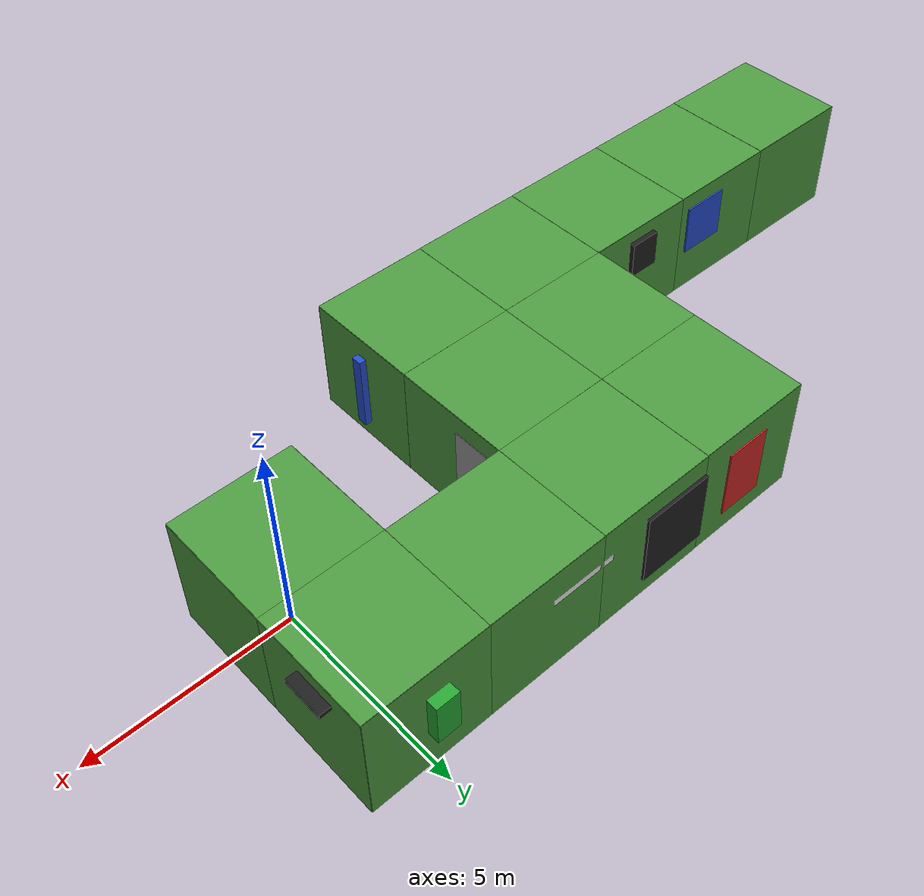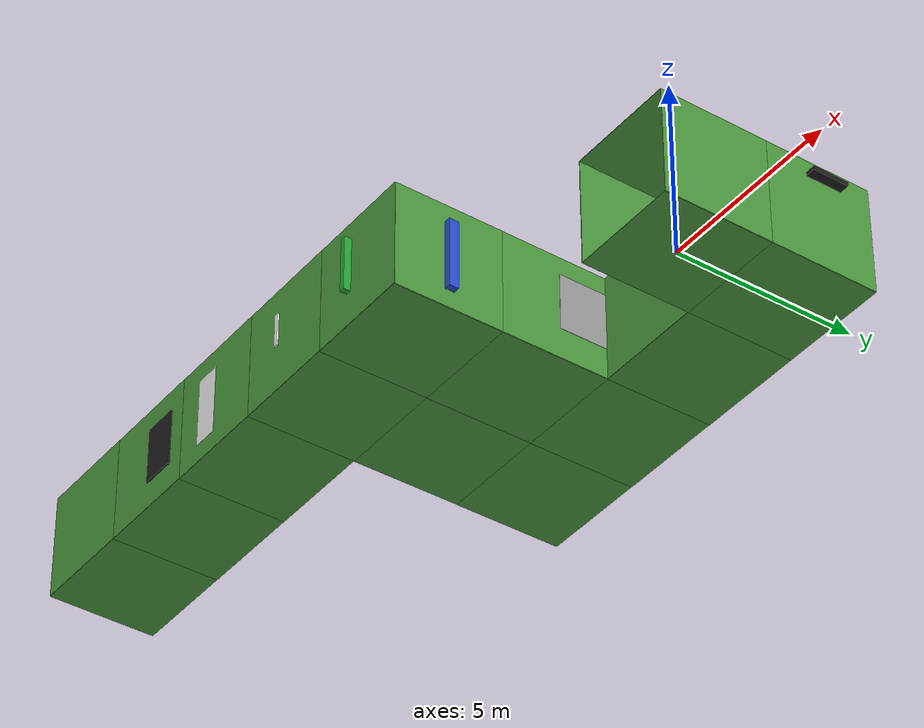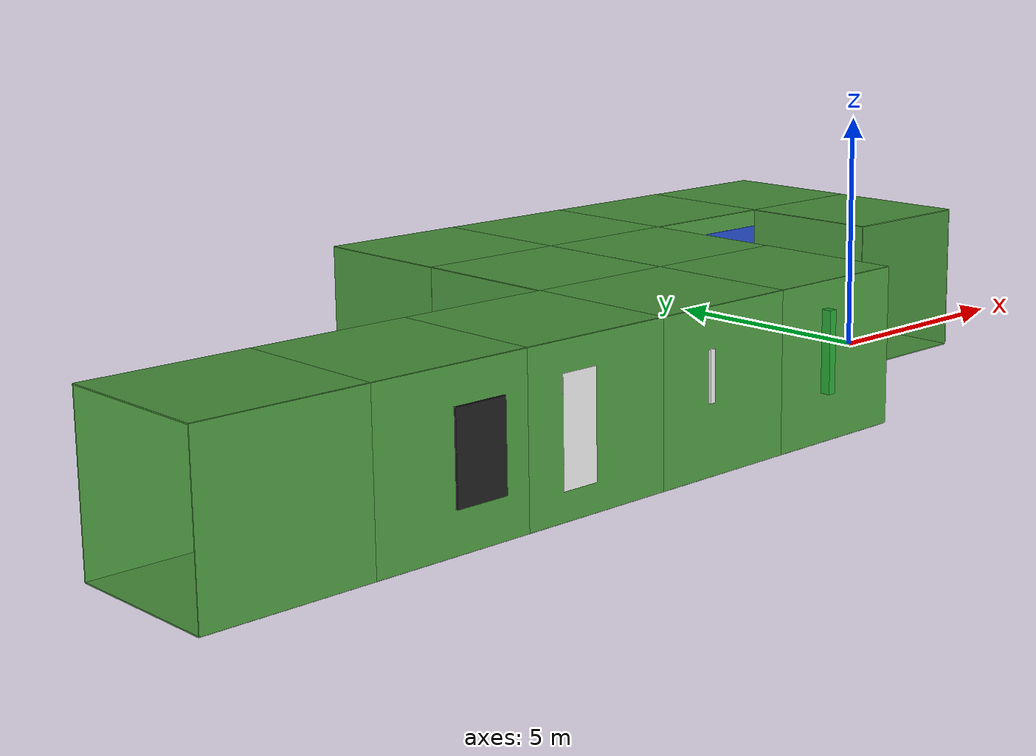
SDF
<?xml version='1.0' encoding='us-ascii'?>
<sdf version="1.6">
  <model name="corridor_grass">
    <model name="wall_right_0_0_0_0">
      <static>1</static>
      <pose>1.5 0.0 1.5 0.0 0.0 1.57</pose>
      <link name="link">
        <collision name="collision">
          <geometry>
            <box>
              <size>3 0.02 3</size>
            </box>
          </geometry>
        </collision>
        <visual name="visual">
          <material>
            <script>
              <name>Gazebo/Grass</name>
              <uri>file://media/materials/scripts/gazebo.material</uri>
            </script>
          </material>
          <geometry>
            <box>
              <size>3 0.02 3</size>
            </box>
          </geometry>
        </visual>
      </link>
    </model>
    <model name="wall_left_0_0_0_0">
      <static>1</static>
      <pose>-1.5 0.0 1.5 0.0 0.0 1.57</pose>
      <link name="link">
        <collision name="collision">
          <geometry>
            <box>
              <size>3 0.02 3</size>
            </box>
          </geometry>
        </collision>
        <visual name="visual">
          <material>
            <script>
              <name>Gazebo/Grass</name>
              <uri>file://media/materials/scripts/gazebo.material</uri>
            </script>
          </material>
          <geometry>
            <box>
              <size>3 0.02 3</size>
            </box>
          </geometry>
        </visual>
      </link>
    </model>
    <model name="wall_top_0_0_0_0">
      <static>1</static>
      <pose>0.0 0.0 3.0 1.57 0.0 0.0</pose>
      <link name="link">
        <collision name="collision">
          <geometry>
            <box>
              <size>3 0.02 3</size>
            </box>
          </geometry>
        </collision>
        <visual name="visual">
          <material>
            <script>
              <name>Gazebo/Grass</name>
              <uri>file://media/materials/scripts/gazebo.material</uri>
            </script>
          </material>
          <geometry>
            <box>
              <size>3 0.02 3</size>
            </box>
          </geometry>
        </visual>
      </link>
    </model>
    <model name="wall_bottom_0_0_0_0">
      <static>1</static>
      <pose>0.0 0.0 0.0 1.57 0.0 0.0</pose>
      <link name="link">
        <collision name="collision">
          <geometry>
            <box>
              <size>3 0.02 3</size>
            </box>
          </geometry>
        </collision>
        <visual name="visual">
          <material>
            <script>
              <name>Gazebo/Grass</name>
              <uri>file://media/materials/scripts/gazebo.material</uri>
            </script>
          </material>
          <geometry>
            <box>
              <size>3 0.02 3</size>
            </box>
          </geometry>
        </visual>
      </link>
    </model>
    <model name="wall_front_0_1_0_3">
      <static>1</static>
      <pose>0.0 4.5 1.5 0.0 0.0 0.0</pose>
      <link name="link">
        <collision name="collision">
          <geometry>
            <box>
              <size>3 0.02 3</size>
            </box>
          </geometry>
        </collision>
        <visual name="visual">
          <material>
            <script>
              <name>Gazebo/Grass</name>
              <uri>file://media/materials/scripts/gazebo.material</uri>
            </script>
          </material>
          <geometry>
            <box>
              <size>3 0.02 3</size>
            </box>
          </geometry>
        </visual>
      </link>
    </model>
    <model name="wall_right_0_1_0_3">
      <static>1</static>
      <pose>1.5 3.0 1.5 0.0 0.0 1.57</pose>
      <link name="link">
        <collision name="collision">
          <geometry>
            <box>
              <size>3 0.02 3</size>
            </box>
          </geometry>
        </collision>
        <visual name="visual">
          <material>
            <script>
              <name>Gazebo/Grass</name>
              <uri>file://media/materials/scripts/gazebo.material</uri>
            </script>
          </material>
          <geometry>
            <box>
              <size>3 0.02 3</size>
            </box>
          </geometry>
        </visual>
      </link>
    </model>
    <model name="wall_top_0_1_0_3">
      <static>1</static>
      <pose>0.0 3.0 3.0 1.57 0.0 0.0</pose>
      <link name="link">
        <collision name="collision">
          <geometry>
            <box>
              <size>3 0.02 3</size>
            </box>
          </geometry>
        </collision>
        <visual name="visual">
          <material>
            <script>
              <name>Gazebo/Grass</name>
              <uri>file://media/materials/scripts/gazebo.material</uri>
            </script>
          </material>
          <geometry>
            <box>
              <size>3 0.02 3</size>
            </box>
          </geometry>
        </visual>
      </link>
    </model>
    <model name="wall_bottom_0_1_0_3">
      <static>1</static>
      <pose>0.0 3.0 0.0 1.57 0.0 0.0</pose>
      <link name="link">
        <collision name="collision">
          <geometry>
            <box>
              <size>3 0.02 3</size>
            </box>
          </geometry>
        </collision>
        <visual name="visual">
          <material>
            <script>
              <name>Gazebo/Grass</name>
              <uri>file://media/materials/scripts/gazebo.material</uri>
            </script>
          </material>
          <geometry>
            <box>
              <size>3 0.02 3</size>
            </box>
          </geometry>
        </visual>
      </link>
    </model>
    <model name="panel_0_1_0_3">
      <static>1</static>
      <pose>-0.20617366556555025 4.5 1.70829655038 0.0 0.0 1.57</pose>
      <link name="link">
        <collision name="collision">
          <geometry>
            <box>
              <size>0.587254887424 0.568857313754 1.10521010753</size>
            </box>
          </geometry>
        </collision>
        <visual name="visual">
          <material>
            <script>
              <name>Gazebo/Green</name>
              <uri>file://media/materials/scripts/gazebo.material</uri>
            </script>
          </material>
          <geometry>
            <box>
              <size>0.587254887424 0.568857313754 1.10521010753</size>
            </box>
          </geometry>
        </visual>
      </link>
    </model>
    <model name="panel_0_1_1_3">
      <static>1</static>
      <pose>1.5 3.153744175431503 2.58291809799 0.0 0.0 0.0</pose>
      <link name="link">
        <collision name="collision">
          <geometry>
            <box>
              <size>0.563074217615 1.00561711471 0.107365033973</size>
            </box>
          </geometry>
        </collision>
        <visual name="visual">
          <material>
            <script>
              <name>Gazebo/Black</name>
              <uri>file://media/materials/scripts/gazebo.material</uri>
            </script>
          </material>
          <geometry>
            <box>
              <size>0.563074217615 1.00561711471 0.107365033973</size>
            </box>
          </geometry>
        </visual>
      </link>
    </model>
    <model name="wall_right_-1_1_0_1">
      <static>1</static>
      <pose>-3.0 4.5 1.5 0.0 0.0 3.14</pose>
      <link name="link">
        <collision name="collision">
          <geometry>
            <box>
              <size>3 0.02 3</size>
            </box>
          </geometry>
        </collision>
        <visual name="visual">
          <material>
            <script>
              <name>Gazebo/Grass</name>
              <uri>file://media/materials/scripts/gazebo.material</uri>
            </script>
          </material>
          <geometry>
            <box>
              <size>3 0.02 3</size>
            </box>
          </geometry>
        </visual>
      </link>
    </model>
    <model name="wall_left_-1_1_0_1">
      <static>1</static>
      <pose>-3.0 1.5 1.5 0.0 0.0 3.14</pose>
      <link name="link">
        <collision name="collision">
          <geometry>
            <box>
              <size>3 0.02 3</size>
            </box>
          </geometry>
        </collision>
        <visual name="visual">
          <material>
            <script>
              <name>Gazebo/Grass</name>
              <uri>file://media/materials/scripts/gazebo.material</uri>
            </script>
          </material>
          <geometry>
            <box>
              <size>3 0.02 3</size>
            </box>
          </geometry>
        </visual>
      </link>
    </model>
    <model name="wall_top_-1_1_0_1">
      <static>1</static>
      <pose>-3.0 3.0 3.0 1.57 0.0 1.57</pose>
      <link name="link">
        <collision name="collision">
          <geometry>
            <box>
              <size>3 0.02 3</size>
            </box>
          </geometry>
        </collision>
        <visual name="visual">
          <material>
            <script>
              <name>Gazebo/Grass</name>
              <uri>file://media/materials/scripts/gazebo.material</uri>
            </script>
          </material>
          <geometry>
            <box>
              <size>3 0.02 3</size>
            </box>
          </geometry>
        </visual>
      </link>
    </model>
    <model name="wall_bottom_-1_1_0_1">
      <static>1</static>
      <pose>-3.0 3.0 0.0 1.57 0.0 1.57</pose>
      <link name="link">
        <collision name="collision">
          <geometry>
            <box>
              <size>3 0.02 3</size>
            </box>
          </geometry>
        </collision>
        <visual name="visual">
          <material>
            <script>
              <name>Gazebo/Grass</name>
              <uri>file://media/materials/scripts/gazebo.material</uri>
            </script>
          </material>
          <geometry>
            <box>
              <size>3 0.02 3</size>
            </box>
          </geometry>
        </visual>
      </link>
    </model>
    <model name="panel_-1_1_0_1">
      <static>1</static>
      <pose>-2.2888105868534696 1.5 2.27836944798 0.0 0.0 1.57</pose>
      <link name="link">
        <collision name="collision">
          <geometry>
            <box>
              <size>0.0474576898815 1.61076393909 0.762282445653</size>
            </box>
          </geometry>
        </collision>
        <visual name="visual">
          <material>
            <script>
              <name>Gazebo/Blue</name>
              <uri>file://media/materials/scripts/gazebo.material</uri>
            </script>
          </material>
          <geometry>
            <box>
              <size>0.0474576898815 1.61076393909 0.762282445653</size>
            </box>
          </geometry>
        </visual>
      </link>
    </model>
    <model name="panel_-1_1_1_1">
      <static>1</static>
      <pose>-3.955345844200348 4.5 2.11711492792 0.0 0.0 1.57</pose>
      <link name="link">
        <collision name="collision">
          <geometry>
            <box>
              <size>0.0237688656301 1.64108558094 0.175144061662</size>
            </box>
          </geometry>
        </collision>
        <visual name="visual">
          <material>
            <script>
              <name>Gazebo/White</name>
              <uri>file://media/materials/scripts/gazebo.material</uri>
            </script>
          </material>
          <geometry>
            <box>
              <size>0.0237688656301 1.64108558094 0.175144061662</size>
            </box>
          </geometry>
        </visual>
      </link>
    </model>
    <model name="wall_right_-2_1_0_1">
      <static>1</static>
      <pose>-6.0 4.5 1.5 0.0 0.0 3.14</pose>
      <link name="link">
        <collision name="collision">
          <geometry>
            <box>
              <size>3 0.02 3</size>
            </box>
          </geometry>
        </collision>
        <visual name="visual">
          <material>
            <script>
              <name>Gazebo/Grass</name>
              <uri>file://media/materials/scripts/gazebo.material</uri>
            </script>
          </material>
          <geometry>
            <box>
              <size>3 0.02 3</size>
            </box>
          </geometry>
        </visual>
      </link>
    </model>
    <model name="wall_left_-2_1_0_1">
      <static>1</static>
      <pose>-6.0 1.5 1.5 0.0 0.0 3.14</pose>
      <link name="link">
        <collision name="collision">
          <geometry>
            <box>
              <size>3 0.02 3</size>
            </box>
          </geometry>
        </collision>
        <visual name="visual">
          <material>
            <script>
              <name>Gazebo/Grass</name>
              <uri>file://media/materials/scripts/gazebo.material</uri>
            </script>
          </material>
          <geometry>
            <box>
              <size>3 0.02 3</size>
            </box>
          </geometry>
        </visual>
      </link>
    </model>
    <model name="wall_top_-2_1_0_1">
      <static>1</static>
      <pose>-6.0 3.0 3.0 1.57 0.0 1.57</pose>
      <link name="link">
        <collision name="collision">
          <geometry>
            <box>
              <size>3 0.02 3</size>
            </box>
          </geometry>
        </collision>
        <visual name="visual">
          <material>
            <script>
              <name>Gazebo/Grass</name>
              <uri>file://media/materials/scripts/gazebo.material</uri>
            </script>
          </material>
          <geometry>
            <box>
              <size>3 0.02 3</size>
            </box>
          </geometry>
        </visual>
      </link>
    </model>
    <model name="wall_bottom_-2_1_0_1">
      <static>1</static>
      <pose>-6.0 3.0 0.0 1.57 0.0 1.57</pose>
      <link name="link">
        <collision name="collision">
          <geometry>
            <box>
              <size>3 0.02 3</size>
            </box>
          </geometry>
        </collision>
        <visual name="visual">
          <material>
            <script>
              <name>Gazebo/Grass</name>
              <uri>file://media/materials/scripts/gazebo.material</uri>
            </script>
          </material>
          <geometry>
            <box>
              <size>3 0.02 3</size>
            </box>
          </geometry>
        </visual>
      </link>
    </model>
    <model name="panel_-2_1_0_1">
      <static>1</static>
      <pose>-6.46522045240204 1.5 1.45469663286 0.0 0.0 1.57</pose>
      <link name="link">
        <collision name="collision">
          <geometry>
            <box>
              <size>0.227604984163 0.867688501396 1.33124559532</size>
            </box>
          </geometry>
        </collision>
        <visual name="visual">
          <material>
            <script>
              <name>Gazebo/White</name>
              <uri>file://media/materials/scripts/gazebo.material</uri>
            </script>
          </material>
          <geometry>
            <box>
              <size>0.227604984163 0.867688501396 1.33124559532</size>
            </box>
          </geometry>
        </visual>
      </link>
    </model>
    <model name="panel_-2_1_1_1">
      <static>1</static>
      <pose>-6.60365673027734 4.5 1.50200779432 0.0 0.0 1.57</pose>
      <link name="link">
        <collision name="collision">
          <geometry>
            <box>
              <size>0.174543325939 1.76452988534 1.92557251972</size>
            </box>
          </geometry>
        </collision>
        <visual name="visual">
          <material>
            <script>
              <name>Gazebo/Black</name>
              <uri>file://media/materials/scripts/gazebo.material</uri>
            </script>
          </material>
          <geometry>
            <box>
              <size>0.174543325939 1.76452988534 1.92557251972</size>
            </box>
          </geometry>
        </visual>
      </link>
    </model>
    <model name="wall_front_-3_1_0_3">
      <static>1</static>
      <pose>-10.5 3.0 1.5 0.0 0.0 1.57</pose>
      <link name="link">
        <collision name="collision">
          <geometry>
            <box>
              <size>3 0.02 3</size>
            </box>
          </geometry>
        </collision>
        <visual name="visual">
          <material>
            <script>
              <name>Gazebo/Grass</name>
              <uri>file://media/materials/scripts/gazebo.material</uri>
            </script>
          </material>
          <geometry>
            <box>
              <size>3 0.02 3</size>
            </box>
          </geometry>
        </visual>
      </link>
    </model>
    <model name="wall_right_-3_1_0_3">
      <static>1</static>
      <pose>-9.0 4.5 1.5 0.0 0.0 3.14</pose>
      <link name="link">
        <collision name="collision">
          <geometry>
            <box>
              <size>3 0.02 3</size>
            </box>
          </geometry>
        </collision>
        <visual name="visual">
          <material>
            <script>
              <name>Gazebo/Grass</name>
              <uri>file://media/materials/scripts/gazebo.material</uri>
            </script>
          </material>
          <geometry>
            <box>
              <size>3 0.02 3</size>
            </box>
          </geometry>
        </visual>
      </link>
    </model>
    <model name="wall_top_-3_1_0_3">
      <static>1</static>
      <pose>-9.0 3.0 3.0 1.57 0.0 1.57</pose>
      <link name="link">
        <collision name="collision">
          <geometry>
            <box>
              <size>3 0.02 3</size>
            </box>
          </geometry>
        </collision>
        <visual name="visual">
          <material>
            <script>
              <name>Gazebo/Grass</name>
              <uri>file://media/materials/scripts/gazebo.material</uri>
            </script>
          </material>
          <geometry>
            <box>
              <size>3 0.02 3</size>
            </box>
          </geometry>
        </visual>
      </link>
    </model>
    <model name="wall_bottom_-3_1_0_3">
      <static>1</static>
      <pose>-9.0 3.0 0.0 1.57 0.0 1.57</pose>
      <link name="link">
        <collision name="collision">
          <geometry>
            <box>
              <size>3 0.02 3</size>
            </box>
          </geometry>
        </collision>
        <visual name="visual">
          <material>
            <script>
              <name>Gazebo/Grass</name>
              <uri>file://media/materials/scripts/gazebo.material</uri>
            </script>
          </material>
          <geometry>
            <box>
              <size>3 0.02 3</size>
            </box>
          </geometry>
        </visual>
      </link>
    </model>
    <model name="panel_-3_1_0_3">
      <static>1</static>
      <pose>-10.5 2.3137839577128005 0.406716588768 0.0 0.0 3.14</pose>
      <link name="link">
        <collision name="collision">
          <geometry>
            <box>
              <size>0.045611989098 1.31126150092 0.305686362029</size>
            </box>
          </geometry>
        </collision>
        <visual name="visual">
          <material>
            <script>
              <name>Gazebo/Green</name>
              <uri>file://media/materials/scripts/gazebo.material</uri>
            </script>
          </material>
          <geometry>
            <box>
              <size>0.045611989098 1.31126150092 0.305686362029</size>
            </box>
          </geometry>
        </visual>
      </link>
    </model>
    <model name="panel_-3_1_1_3">
      <static>1</static>
      <pose>-8.854149789010377 4.5 1.48831324731 0.0 0.0 1.57</pose>
      <link name="link">
        <collision name="collision">
          <geometry>
            <box>
              <size>0.0876173632185 1.16307615352 1.84074581955</size>
            </box>
          </geometry>
        </collision>
        <visual name="visual">
          <material>
            <script>
              <name>Gazebo/Red</name>
              <uri>file://media/materials/scripts/gazebo.material</uri>
            </script>
          </material>
          <geometry>
            <box>
              <size>0.0876173632185 1.16307615352 1.84074581955</size>
            </box>
          </geometry>
        </visual>
      </link>
    </model>
    <model name="wall_front_-3_0_0_3">
      <static>1</static>
      <pose>-9.0 -1.5 1.5 0.0 0.0 3.14</pose>
      <link name="link">
        <collision name="collision">
          <geometry>
            <box>
              <size>3 0.02 3</size>
            </box>
          </geometry>
        </collision>
        <visual name="visual">
          <material>
            <script>
              <name>Gazebo/Grass</name>
              <uri>file://media/materials/scripts/gazebo.material</uri>
            </script>
          </material>
          <geometry>
            <box>
              <size>3 0.02 3</size>
            </box>
          </geometry>
        </visual>
      </link>
    </model>
    <model name="wall_right_-3_0_0_3">
      <static>1</static>
      <pose>-10.5 0.0 1.5 0.0 0.0 4.71</pose>
      <link name="link">
        <collision name="collision">
          <geometry>
            <box>
              <size>3 0.02 3</size>
            </box>
          </geometry>
        </collision>
        <visual name="visual">
          <material>
            <script>
              <name>Gazebo/Grass</name>
              <uri>file://media/materials/scripts/gazebo.material</uri>
            </script>
          </material>
          <geometry>
            <box>
              <size>3 0.02 3</size>
            </box>
          </geometry>
        </visual>
      </link>
    </model>
    <model name="wall_top_-3_0_0_3">
      <static>1</static>
      <pose>-9.0 0.0 3.0 1.57 0.0 3.14</pose>
      <link name="link">
        <collision name="collision">
          <geometry>
            <box>
              <size>3 0.02 3</size>
            </box>
          </geometry>
        </collision>
        <visual name="visual">
          <material>
            <script>
              <name>Gazebo/Grass</name>
              <uri>file://media/materials/scripts/gazebo.material</uri>
            </script>
          </material>
          <geometry>
            <box>
              <size>3 0.02 3</size>
            </box>
          </geometry>
        </visual>
      </link>
    </model>
    <model name="wall_bottom_-3_0_0_3">
      <static>1</static>
      <pose>-9.0 0.0 0.0 1.57 0.0 3.14</pose>
      <link name="link">
        <collision name="collision">
          <geometry>
            <box>
              <size>3 0.02 3</size>
            </box>
          </geometry>
        </collision>
        <visual name="visual">
          <material>
            <script>
              <name>Gazebo/Grass</name>
              <uri>file://media/materials/scripts/gazebo.material</uri>
            </script>
          </material>
          <geometry>
            <box>
              <size>3 0.02 3</size>
            </box>
          </geometry>
        </visual>
      </link>
    </model>
    <model name="panel_-3_0_0_3">
      <static>1</static>
      <pose>-8.469642783386634 -1.5 0.885635229762 0.0 0.0 4.71</pose>
      <link name="link">
        <collision name="collision">
          <geometry>
            <box>
              <size>0.253658131985 0.934178217778 0.66192778021</size>
            </box>
          </geometry>
        </collision>
        <visual name="visual">
          <material>
            <script>
              <name>Gazebo/White</name>
              <uri>file://media/materials/scripts/gazebo.material</uri>
            </script>
          </material>
          <geometry>
            <box>
              <size>0.253658131985 0.934178217778 0.66192778021</size>
            </box>
          </geometry>
        </visual>
      </link>
    </model>
    <model name="panel_-3_0_1_3">
      <static>1</static>
      <pose>-10.5 0.8648373040261126 0.90321707446 0.0 0.0 3.14</pose>
      <link name="link">
        <collision name="collision">
          <geometry>
            <box>
              <size>0.348214347187 1.32703512895 0.376564228714</size>
            </box>
          </geometry>
        </collision>
        <visual name="visual">
          <material>
            <script>
              <name>Gazebo/Blue</name>
              <uri>file://media/materials/scripts/gazebo.material</uri>
            </script>
          </material>
          <geometry>
            <box>
              <size>0.348214347187 1.32703512895 0.376564228714</size>
            </box>
          </geometry>
        </visual>
      </link>
    </model>
    <model name="wall_front_-2_0_0_2">
      <static>1</static>
      <pose>-4.5 0.0 1.5 0.0 0.0 -1.57</pose>
      <link name="link">
        <collision name="collision">
          <geometry>
            <box>
              <size>3 0.02 3</size>
            </box>
          </geometry>
        </collision>
        <visual name="visual">
          <material>
            <script>
              <name>Gazebo/Grass</name>
              <uri>file://media/materials/scripts/gazebo.material</uri>
            </script>
          </material>
          <geometry>
            <box>
              <size>3 0.02 3</size>
            </box>
          </geometry>
        </visual>
      </link>
    </model>
    <model name="wall_left_-2_0_0_2">
      <static>1</static>
      <pose>-6.0 1.5 1.5 0.0 0.0 0.0</pose>
      <link name="link">
        <collision name="collision">
          <geometry>
            <box>
              <size>3 0.02 3</size>
            </box>
          </geometry>
        </collision>
        <visual name="visual">
          <material>
            <script>
              <name>Gazebo/Grass</name>
              <uri>file://media/materials/scripts/gazebo.material</uri>
            </script>
          </material>
          <geometry>
            <box>
              <size>3 0.02 3</size>
            </box>
          </geometry>
        </visual>
      </link>
    </model>
    <model name="wall_top_-2_0_0_2">
      <static>1</static>
      <pose>-6.0 0.0 3.0 1.57 0.0 -1.57</pose>
      <link name="link">
        <collision name="collision">
          <geometry>
            <box>
              <size>3 0.02 3</size>
            </box>
          </geometry>
        </collision>
        <visual name="visual">
          <material>
            <script>
              <name>Gazebo/Grass</name>
              <uri>file://media/materials/scripts/gazebo.material</uri>
            </script>
          </material>
          <geometry>
            <box>
              <size>3 0.02 3</size>
            </box>
          </geometry>
        </visual>
      </link>
    </model>
    <model name="wall_bottom_-2_0_0_2">
      <static>1</static>
      <pose>-6.0 0.0 0.0 1.57 0.0 -1.57</pose>
      <link name="link">
        <collision name="collision">
          <geometry>
            <box>
              <size>3 0.02 3</size>
            </box>
          </geometry>
        </collision>
        <visual name="visual">
          <material>
            <script>
              <name>Gazebo/Grass</name>
              <uri>file://media/materials/scripts/gazebo.material</uri>
            </script>
          </material>
          <geometry>
            <box>
              <size>3 0.02 3</size>
            </box>
          </geometry>
        </visual>
      </link>
    </model>
    <model name="panel_-2_0_0_2">
      <static>1</static>
      <pose>-4.5 0.943534201034876 1.67573499513 0.0 0.0 0.0</pose>
      <link name="link">
        <collision name="collision">
          <geometry>
            <box>
              <size>0.0355361808587 1.59025423585 1.61978484883</size>
            </box>
          </geometry>
        </collision>
        <visual name="visual">
          <material>
            <script>
              <name>Gazebo/Grey</name>
              <uri>file://media/materials/scripts/gazebo.material</uri>
            </script>
          </material>
          <geometry>
            <box>
              <size>0.0355361808587 1.59025423585 1.61978484883</size>
            </box>
          </geometry>
        </visual>
      </link>
    </model>
    <model name="panel_-2_0_1_2">
      <static>1</static>
      <pose>-6.698921999547739 1.5 1.46049113193 0.0 0.0 -1.57</pose>
      <link name="link">
        <collision name="collision">
          <geometry>
            <box>
              <size>0.174899113834 1.34715117619 1.72993723618</size>
            </box>
          </geometry>
        </collision>
        <visual name="visual">
          <material>
            <script>
              <name>Gazebo/Blue</name>
              <uri>file://media/materials/scripts/gazebo.material</uri>
            </script>
          </material>
          <geometry>
            <box>
              <size>0.174899113834 1.34715117619 1.72993723618</size>
            </box>
          </geometry>
        </visual>
      </link>
    </model>
    <model name="wall_front_-2_-1_0_2">
      <static>1</static>
      <pose>-6.0 -4.5 1.5 0.0 0.0 3.14</pose>
      <link name="link">
        <collision name="collision">
          <geometry>
            <box>
              <size>3 0.02 3</size>
            </box>
          </geometry>
        </collision>
        <visual name="visual">
          <material>
            <script>
              <name>Gazebo/Grass</name>
              <uri>file://media/materials/scripts/gazebo.material</uri>
            </script>
          </material>
          <geometry>
            <box>
              <size>3 0.02 3</size>
            </box>
          </geometry>
        </visual>
      </link>
    </model>
    <model name="wall_left_-2_-1_0_2">
      <static>1</static>
      <pose>-4.5 -3.0 1.5 0.0 0.0 4.71</pose>
      <link name="link">
        <collision name="collision">
          <geometry>
            <box>
              <size>3 0.02 3</size>
            </box>
          </geometry>
        </collision>
        <visual name="visual">
          <material>
            <script>
              <name>Gazebo/Grass</name>
              <uri>file://media/materials/scripts/gazebo.material</uri>
            </script>
          </material>
          <geometry>
            <box>
              <size>3 0.02 3</size>
            </box>
          </geometry>
        </visual>
      </link>
    </model>
    <model name="wall_top_-2_-1_0_2">
      <static>1</static>
      <pose>-6.0 -3.0 3.0 1.57 0.0 3.14</pose>
      <link name="link">
        <collision name="collision">
          <geometry>
            <box>
              <size>3 0.02 3</size>
            </box>
          </geometry>
        </collision>
        <visual name="visual">
          <material>
            <script>
              <name>Gazebo/Grass</name>
              <uri>file://media/materials/scripts/gazebo.material</uri>
            </script>
          </material>
          <geometry>
            <box>
              <size>3 0.02 3</size>
            </box>
          </geometry>
        </visual>
      </link>
    </model>
    <model name="wall_bottom_-2_-1_0_2">
      <static>1</static>
      <pose>-6.0 -3.0 0.0 1.57 0.0 3.14</pose>
      <link name="link">
        <collision name="collision">
          <geometry>
            <box>
              <size>3 0.02 3</size>
            </box>
          </geometry>
        </collision>
        <visual name="visual">
          <material>
            <script>
              <name>Gazebo/Grass</name>
              <uri>file://media/materials/scripts/gazebo.material</uri>
            </script>
          </material>
          <geometry>
            <box>
              <size>3 0.02 3</size>
            </box>
          </geometry>
        </visual>
      </link>
    </model>
    <model name="panel_-2_-1_0_2">
      <static>1</static>
      <pose>-6.331517711970571 -4.5 1.71354114123 0.0 0.0 4.71</pose>
      <link name="link">
        <collision name="collision">
          <geometry>
            <box>
              <size>0.40840446307 0.15776362627 1.55838558483</size>
            </box>
          </geometry>
        </collision>
        <visual name="visual">
          <material>
            <script>
              <name>Gazebo/Green</name>
              <uri>file://media/materials/scripts/gazebo.material</uri>
            </script>
          </material>
          <geometry>
            <box>
              <size>0.40840446307 0.15776362627 1.55838558483</size>
            </box>
          </geometry>
        </visual>
      </link>
    </model>
    <model name="panel_-2_-1_1_2">
      <static>1</static>
      <pose>-4.5 -2.98639606696318 1.48801631688 0.0 0.0 3.14</pose>
      <link name="link">
        <collision name="collision">
          <geometry>
            <box>
              <size>0.369271109926 0.263409388204 1.98380517958</size>
            </box>
          </geometry>
        </collision>
        <visual name="visual">
          <material>
            <script>
              <name>Gazebo/Blue</name>
              <uri>file://media/materials/scripts/gazebo.material</uri>
            </script>
          </material>
          <geometry>
            <box>
              <size>0.369271109926 0.263409388204 1.98380517958</size>
            </box>
          </geometry>
        </visual>
      </link>
    </model>
    <model name="wall_right_-3_-1_0_1">
      <static>1</static>
      <pose>-9.0 -1.5 1.5 0.0 0.0 3.14</pose>
      <link name="link">
        <collision name="collision">
          <geometry>
            <box>
              <size>3 0.02 3</size>
            </box>
          </geometry>
        </collision>
        <visual name="visual">
          <material>
            <script>
              <name>Gazebo/Grass</name>
              <uri>file://media/materials/scripts/gazebo.material</uri>
            </script>
          </material>
          <geometry>
            <box>
              <size>3 0.02 3</size>
            </box>
          </geometry>
        </visual>
      </link>
    </model>
    <model name="wall_left_-3_-1_0_1">
      <static>1</static>
      <pose>-9.0 -4.5 1.5 0.0 0.0 3.14</pose>
      <link name="link">
        <collision name="collision">
          <geometry>
            <box>
              <size>3 0.02 3</size>
            </box>
          </geometry>
        </collision>
        <visual name="visual">
          <material>
            <script>
              <name>Gazebo/Grass</name>
              <uri>file://media/materials/scripts/gazebo.material</uri>
            </script>
          </material>
          <geometry>
            <box>
              <size>3 0.02 3</size>
            </box>
          </geometry>
        </visual>
      </link>
    </model>
    <model name="wall_top_-3_-1_0_1">
      <static>1</static>
      <pose>-9.0 -3.0 3.0 1.57 0.0 1.57</pose>
      <link name="link">
        <collision name="collision">
          <geometry>
            <box>
              <size>3 0.02 3</size>
            </box>
          </geometry>
        </collision>
        <visual name="visual">
          <material>
            <script>
              <name>Gazebo/Grass</name>
              <uri>file://media/materials/scripts/gazebo.material</uri>
            </script>
          </material>
          <geometry>
            <box>
              <size>3 0.02 3</size>
            </box>
          </geometry>
        </visual>
      </link>
    </model>
    <model name="wall_bottom_-3_-1_0_1">
      <static>1</static>
      <pose>-9.0 -3.0 0.0 1.57 0.0 1.57</pose>
      <link name="link">
        <collision name="collision">
          <geometry>
            <box>
              <size>3 0.02 3</size>
            </box>
          </geometry>
        </collision>
        <visual name="visual">
          <material>
            <script>
              <name>Gazebo/Grass</name>
              <uri>file://media/materials/scripts/gazebo.material</uri>
            </script>
          </material>
          <geometry>
            <box>
              <size>3 0.02 3</size>
            </box>
          </geometry>
        </visual>
      </link>
    </model>
    <model name="panel_-3_-1_0_1">
      <static>1</static>
      <pose>-9.155649721810539 -1.5 0.402500752957 0.0 0.0 1.57</pose>
      <link name="link">
        <collision name="collision">
          <geometry>
            <box>
              <size>0.455333917005 1.03886418903 0.209103301665</size>
            </box>
          </geometry>
        </collision>
        <visual name="visual">
          <material>
            <script>
              <name>Gazebo/Black</name>
              <uri>file://media/materials/scripts/gazebo.material</uri>
            </script>
          </material>
          <geometry>
            <box>
              <size>0.455333917005 1.03886418903 0.209103301665</size>
            </box>
          </geometry>
        </visual>
      </link>
    </model>
    <model name="panel_-3_-1_1_1">
      <static>1</static>
      <pose>-9.332315657334405 -4.5 1.79232370874 0.0 0.0 1.57</pose>
      <link name="link">
        <collision name="collision">
          <geometry>
            <box>
              <size>0.109484480133 0.115712868188 0.950272372013</size>
            </box>
          </geometry>
        </collision>
        <visual name="visual">
          <material>
            <script>
              <name>Gazebo/White</name>
              <uri>file://media/materials/scripts/gazebo.material</uri>
            </script>
          </material>
          <geometry>
            <box>
              <size>0.109484480133 0.115712868188 0.950272372013</size>
            </box>
          </geometry>
        </visual>
      </link>
    </model>
    <model name="wall_right_-4_-1_0_1">
      <static>1</static>
      <pose>-12.0 -1.5 1.5 0.0 0.0 3.14</pose>
      <link name="link">
        <collision name="collision">
          <geometry>
            <box>
              <size>3 0.02 3</size>
            </box>
          </geometry>
        </collision>
        <visual name="visual">
          <material>
            <script>
              <name>Gazebo/Grass</name>
              <uri>file://media/materials/scripts/gazebo.material</uri>
            </script>
          </material>
          <geometry>
            <box>
              <size>3 0.02 3</size>
            </box>
          </geometry>
        </visual>
      </link>
    </model>
    <model name="wall_left_-4_-1_0_1">
      <static>1</static>
      <pose>-12.0 -4.5 1.5 0.0 0.0 3.14</pose>
      <link name="link">
        <collision name="collision">
          <geometry>
            <box>
              <size>3 0.02 3</size>
            </box>
          </geometry>
        </collision>
        <visual name="visual">
          <material>
            <script>
              <name>Gazebo/Grass</name>
              <uri>file://media/materials/scripts/gazebo.material</uri>
            </script>
          </material>
          <geometry>
            <box>
              <size>3 0.02 3</size>
            </box>
          </geometry>
        </visual>
      </link>
    </model>
    <model name="wall_top_-4_-1_0_1">
      <static>1</static>
      <pose>-12.0 -3.0 3.0 1.57 0.0 1.57</pose>
      <link name="link">
        <collision name="collision">
          <geometry>
            <box>
              <size>3 0.02 3</size>
            </box>
          </geometry>
        </collision>
        <visual name="visual">
          <material>
            <script>
              <name>Gazebo/Grass</name>
              <uri>file://media/materials/scripts/gazebo.material</uri>
            </script>
          </material>
          <geometry>
            <box>
              <size>3 0.02 3</size>
            </box>
          </geometry>
        </visual>
      </link>
    </model>
    <model name="wall_bottom_-4_-1_0_1">
      <static>1</static>
      <pose>-12.0 -3.0 0.0 1.57 0.0 1.57</pose>
      <link name="link">
        <collision name="collision">
          <geometry>
            <box>
              <size>3 0.02 3</size>
            </box>
          </geometry>
        </collision>
        <visual name="visual">
          <material>
            <script>
              <name>Gazebo/Grass</name>
              <uri>file://media/materials/scripts/gazebo.material</uri>
            </script>
          </material>
          <geometry>
            <box>
              <size>3 0.02 3</size>
            </box>
          </geometry>
        </visual>
      </link>
    </model>
    <model name="panel_-4_-1_0_1">
      <static>1</static>
      <pose>-12.020773483898019 -1.5 2.17522016671 0.0 0.0 1.57</pose>
      <link name="link">
        <collision name="collision">
          <geometry>
            <box>
              <size>0.293994162717 0.819883400459 0.953976604181</size>
            </box>
          </geometry>
        </collision>
        <visual name="visual">
          <material>
            <script>
              <name>Gazebo/Black</name>
              <uri>file://media/materials/scripts/gazebo.material</uri>
            </script>
          </material>
          <geometry>
            <box>
              <size>0.293994162717 0.819883400459 0.953976604181</size>
            </box>
          </geometry>
        </visual>
      </link>
    </model>
    <model name="panel_-4_-1_1_1">
      <static>1</static>
      <pose>-12.395996458195745 -4.5 1.48515338272 0.0 0.0 1.57</pose>
      <link name="link">
        <collision name="collision">
          <geometry>
            <box>
              <size>0.0261526290651 0.726230604733 1.9442328684</size>
            </box>
          </geometry>
        </collision>
        <visual name="visual">
          <material>
            <script>
              <name>Gazebo/White</name>
              <uri>file://media/materials/scripts/gazebo.material</uri>
            </script>
          </material>
          <geometry>
            <box>
              <size>0.0261526290651 0.726230604733 1.9442328684</size>
            </box>
          </geometry>
        </visual>
      </link>
    </model>
    <model name="wall_right_-5_-1_0_1">
      <static>1</static>
      <pose>-15.0 -1.5 1.5 0.0 0.0 3.14</pose>
      <link name="link">
        <collision name="collision">
          <geometry>
            <box>
              <size>3 0.02 3</size>
            </box>
          </geometry>
        </collision>
        <visual name="visual">
          <material>
            <script>
              <name>Gazebo/Grass</name>
              <uri>file://media/materials/scripts/gazebo.material</uri>
            </script>
          </material>
          <geometry>
            <box>
              <size>3 0.02 3</size>
            </box>
          </geometry>
        </visual>
      </link>
    </model>
    <model name="wall_left_-5_-1_0_1">
      <static>1</static>
      <pose>-15.0 -4.5 1.5 0.0 0.0 3.14</pose>
      <link name="link">
        <collision name="collision">
          <geometry>
            <box>
              <size>3 0.02 3</size>
            </box>
          </geometry>
        </collision>
        <visual name="visual">
          <material>
            <script>
              <name>Gazebo/Grass</name>
              <uri>file://media/materials/scripts/gazebo.material</uri>
            </script>
          </material>
          <geometry>
            <box>
              <size>3 0.02 3</size>
            </box>
          </geometry>
        </visual>
      </link>
    </model>
    <model name="wall_top_-5_-1_0_1">
      <static>1</static>
      <pose>-15.0 -3.0 3.0 1.57 0.0 1.57</pose>
      <link name="link">
        <collision name="collision">
          <geometry>
            <box>
              <size>3 0.02 3</size>
            </box>
          </geometry>
        </collision>
        <visual name="visual">
          <material>
            <script>
              <name>Gazebo/Grass</name>
              <uri>file://media/materials/scripts/gazebo.material</uri>
            </script>
          </material>
          <geometry>
            <box>
              <size>3 0.02 3</size>
            </box>
          </geometry>
        </visual>
      </link>
    </model>
    <model name="wall_bottom_-5_-1_0_1">
      <static>1</static>
      <pose>-15.0 -3.0 0.0 1.57 0.0 1.57</pose>
      <link name="link">
        <collision name="collision">
          <geometry>
            <box>
              <size>3 0.02 3</size>
            </box>
          </geometry>
        </collision>
        <visual name="visual">
          <material>
            <script>
              <name>Gazebo/Grass</name>
              <uri>file://media/materials/scripts/gazebo.material</uri>
            </script>
          </material>
          <geometry>
            <box>
              <size>3 0.02 3</size>
            </box>
          </geometry>
        </visual>
      </link>
    </model>
    <model name="panel_-5_-1_0_1">
      <static>1</static>
      <pose>-14.375568693163785 -1.5 1.88883880958 0.0 0.0 1.57</pose>
      <link name="link">
        <collision name="collision">
          <geometry>
            <box>
              <size>0.10458636047 1.26726225877 1.35596036864</size>
            </box>
          </geometry>
        </collision>
        <visual name="visual">
          <material>
            <script>
              <name>Gazebo/Blue</name>
              <uri>file://media/materials/scripts/gazebo.material</uri>
            </script>
          </material>
          <geometry>
            <box>
              <size>0.10458636047 1.26726225877 1.35596036864</size>
            </box>
          </geometry>
        </visual>
      </link>
    </model>
    <model name="panel_-5_-1_1_1">
      <static>1</static>
      <pose>-14.483104087627842 -4.5 1.54729258523 0.0 0.0 1.57</pose>
      <link name="link">
        <collision name="collision">
          <geometry>
            <box>
              <size>0.121006337186 0.993442893592 1.6046180838</size>
            </box>
          </geometry>
        </collision>
        <visual name="visual">
          <material>
            <script>
              <name>Gazebo/Black</name>
              <uri>file://media/materials/scripts/gazebo.material</uri>
            </script>
          </material>
          <geometry>
            <box>
              <size>0.121006337186 0.993442893592 1.6046180838</size>
            </box>
          </geometry>
        </visual>
      </link>
    </model>
    <model name="wall_right_-6_-1_0_4">
      <static>1</static>
      <pose>-18.0 -1.5 1.5 0.0 0.0 3.14</pose>
      <link name="link">
        <collision name="collision">
          <geometry>
            <box>
              <size>3 0.02 3</size>
            </box>
          </geometry>
        </collision>
        <visual name="visual">
          <material>
            <script>
              <name>Gazebo/Grass</name>
              <uri>file://media/materials/scripts/gazebo.material</uri>
            </script>
          </material>
          <geometry>
            <box>
              <size>3 0.02 3</size>
            </box>
          </geometry>
        </visual>
      </link>
    </model>
    <model name="wall_left_-6_-1_0_4">
      <static>1</static>
      <pose>-18.0 -4.5 1.5 0.0 0.0 3.14</pose>
      <link name="link">
        <collision name="collision">
          <geometry>
            <box>
              <size>3 0.02 3</size>
            </box>
          </geometry>
        </collision>
        <visual name="visual">
          <material>
            <script>
              <name>Gazebo/Grass</name>
              <uri>file://media/materials/scripts/gazebo.material</uri>
            </script>
          </material>
          <geometry>
            <box>
              <size>3 0.02 3</size>
            </box>
          </geometry>
        </visual>
      </link>
    </model>
    <model name="wall_top_-6_-1_0_4">
      <static>1</static>
      <pose>-18.0 -3.0 3.0 1.57 0.0 1.57</pose>
      <link name="link">
        <collision name="collision">
          <geometry>
            <box>
              <size>3 0.02 3</size>
            </box>
          </geometry>
        </collision>
        <visual name="visual">
          <material>
            <script>
              <name>Gazebo/Grass</name>
              <uri>file://media/materials/scripts/gazebo.material</uri>
            </script>
          </material>
          <geometry>
            <box>
              <size>3 0.02 3</size>
            </box>
          </geometry>
        </visual>
      </link>
    </model>
    <model name="wall_bottom_-6_-1_0_4">
      <static>1</static>
      <pose>-18.0 -3.0 0.0 1.57 0.0 1.57</pose>
      <link name="link">
        <collision name="collision">
          <geometry>
            <box>
              <size>3 0.02 3</size>
            </box>
          </geometry>
        </collision>
        <visual name="visual">
          <material>
            <script>
              <name>Gazebo/Grass</name>
              <uri>file://media/materials/scripts/gazebo.material</uri>
            </script>
          </material>
          <geometry>
            <box>
              <size>3 0.02 3</size>
            </box>
          </geometry>
        </visual>
      </link>
    </model>
  </model>
</sdf>
